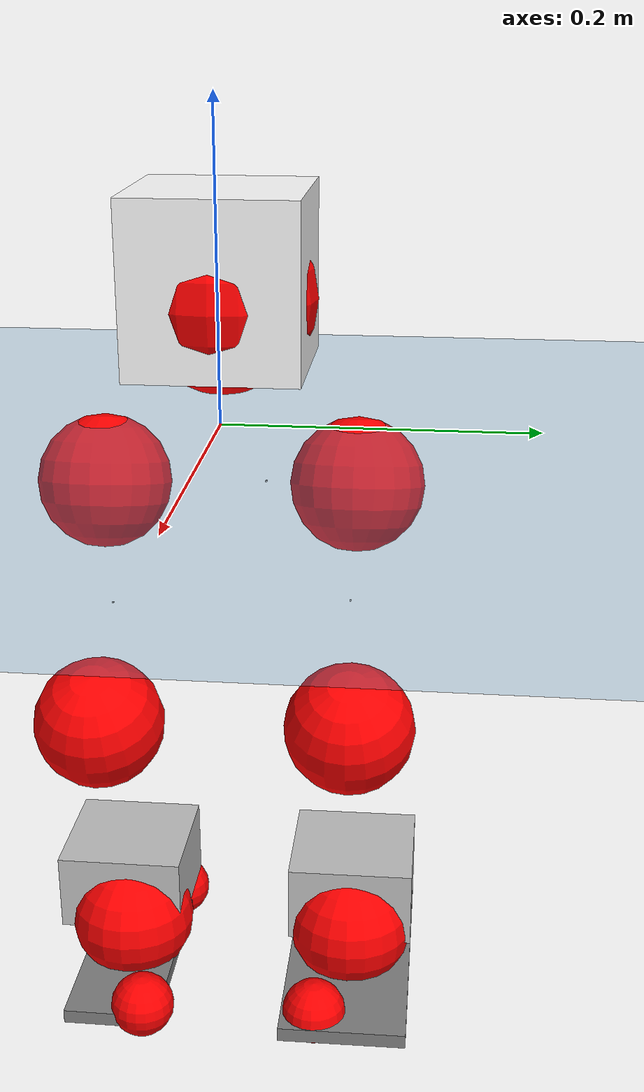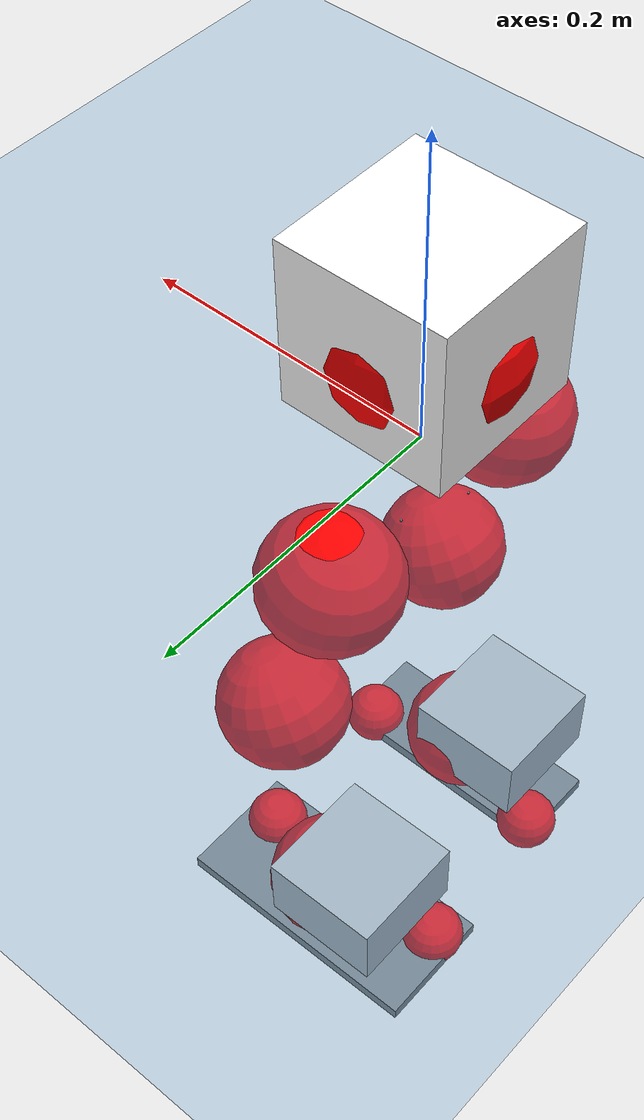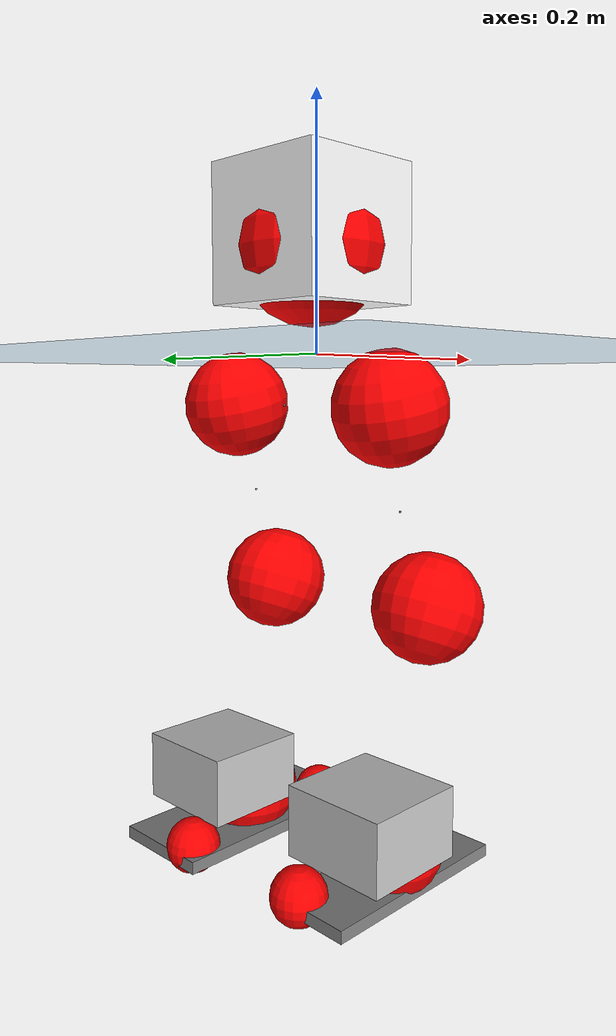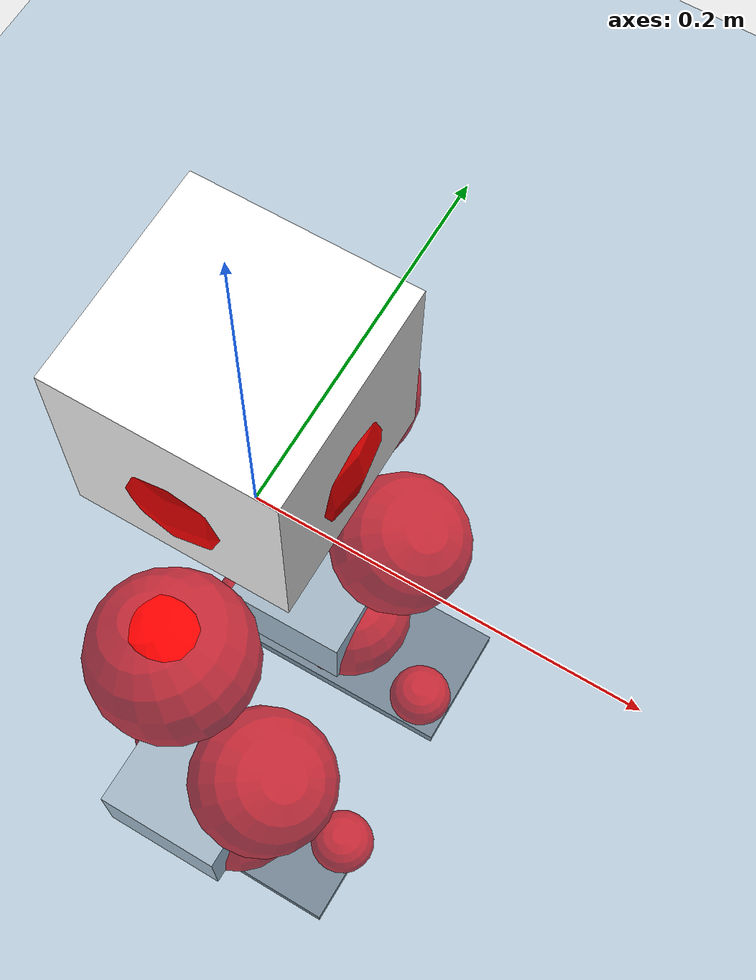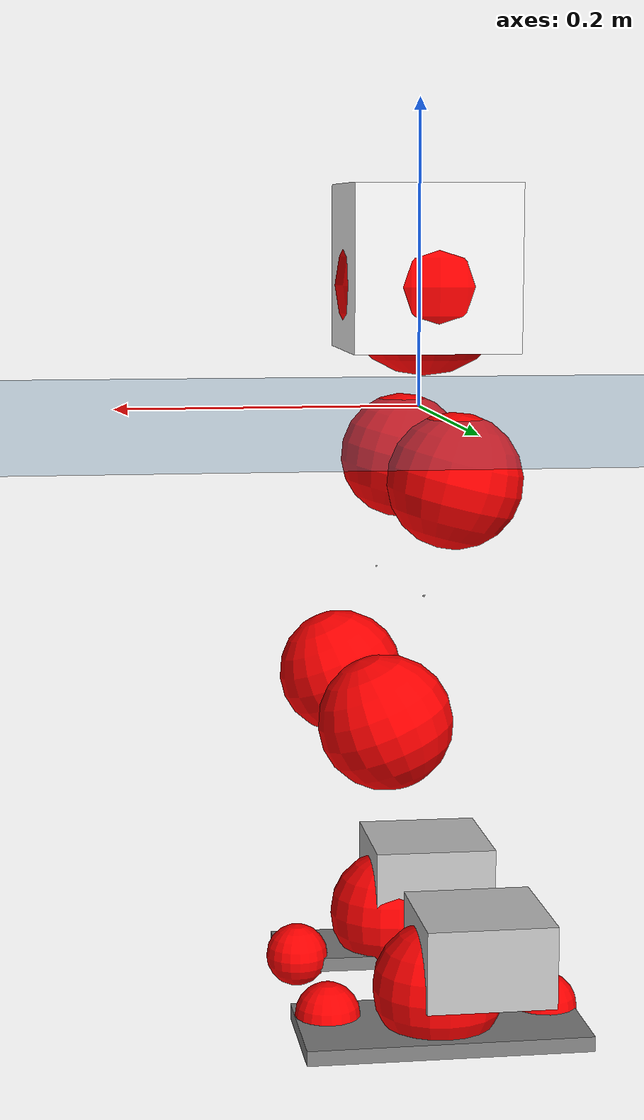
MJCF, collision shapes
<mujoco model="pi_12dof_release_v1">
  <compiler angle="radian" assetdir="assets" balanceinertia="true" inertiafromgeom="false"/>

  <option timestep="0.005" density="1.2" viscosity="2e-05"/>

  <size nkey="1"/>

  <visual>
    <quality shadowsize="8192"/>
    <map shadowclip="0.5"/>
  </visual>

  <default>
    <default class="/">
      <joint armature="0.01" damping="0.01" frictionloss="0.01"/>
      <geom contype="0" conaffinity="0" group="1" solref="-1000 -80"/>
      <site size="0.01 0.005 0.005" group="5"/>
      <general forcelimited="true" biastype="affine" gainprm="20" biasprm="0 -20 -0.5"/>
      <default class="foot">
        <geom size="0.0845 0.036 0.005" type="box" condim="6" group="4" priority="1" friction="0.9 0.2 0.2" solimp="0.015 1 0.005"/>
      </default>
      <default class="reward_collision_sphere">
        <geom group="5" rgba="1 0 0 1"/>
      </default>
    </default>
  </default>

  <asset>
    <texture type="skybox" colorspace="auto" name="//unnamed_texture_0" builtin="gradient" rgb1="0.95 0.95 0.95" rgb2="0.95 0.95 0.95" width="100" height="600"/>
    <texture type="2d" colorspace="auto" name="texplane" builtin="checker" rgb1="0.345 0.575 0.748" rgb2="0.345 0.575 0.748" markrgb="1 1 1" width="512" height="512"/>
    <material name="MatPlane" class="/" texture="texplane" texuniform="true" texrepeat="2 2" specular="0.9"/>
    <mesh name="baselink_1" class="/" file="baselink_1.STL"/>
    <mesh name="r_hip_pitch_link" class="/" file="r_hip_pitch_link.STL"/>
    <mesh name="r_hip_roll_link" class="/" file="r_hip_roll_link.STL"/>
    <mesh name="r_thigh_link" class="/" file="r_thigh_link.STL"/>
    <mesh name="r_calf_link" class="/" file="r_calf_link.STL"/>
    <mesh name="r_ankle_pitch_link" class="/" file="r_ankle_pitch_link.STL"/>
    <mesh name="r_ankle_roll_link" class="/" file="r_ankle_roll_link.STL"/>
    <mesh name="l_hip_pitch_link" class="/" file="l_hip_pitch_link.STL"/>
    <mesh name="l_hip_roll_link" class="/" file="l_hip_roll_link.STL"/>
    <mesh name="l_thigh_link" class="/" file="l_thigh_link.STL"/>
    <mesh name="l_calf_link" class="/" file="l_calf_link.STL"/>
    <mesh name="l_ankle_pitch_link" class="/" file="l_ankle_pitch_link.STL"/>
    <mesh name="l_ankle_roll_link" class="/" file="l_ankle_roll_link.STL"/>
  </asset>

  <worldbody>
    <geom name="floor" class="/" size="100 100 0.125" type="plane" group="0" material="MatPlane"/>
    <light name="toplight_shadow" class="/" pos="0 0 5" dir="0.0990148 0.0990148 -0.990148" type="directional" ambient="0.04 0.04 0.04" diffuse="0.55 0.55 0.55" specular="0.12 0.12 0.12"/>
    <light name="toplight_fill" class="/" pos="0 0 5" dir="0.0990148 0.0990148 -0.990148" type="directional" castshadow="false" ambient="0.04 0.04 0.04" diffuse="0.3 0.3 0.3" specular="0.08 0.08 0.08"/>
    <body name="trunk" pos="-0.00275413 0.00210808 -0.000978885" quat="0.999999 -0.000528008 -0.000480429 0.00103345">
      <inertial pos="0.00178345 -0.00369137 0.0467903" quat="0.696402 0.0140645 0.00627933 0.717487" mass="2.75423" diaginertia="0.0128506 0.00905169 0.00837734"/>
      <joint name="//unnamed_joint_0" type="free"/>
      <geom name="//unnamed_geom_1" class="/" type="mesh" density="0" rgba="1 1 1 1" mesh="baselink_1"/>
      <geom name="//unnamed_geom_2" class="/" size="0.0537736 0.0537736 0.0537736" pos="0 0 0.0922161" type="box" rgba="1 1 1 1"/>
      <geom name="//unnamed_geom_3" class="reward_collision_sphere" size="0.0591509" pos="0 0 0.0806891"/>
      <site name="imu" class="/" pos="0.0125661 -0.00980668 0.0205342" size="0.0107547"/>
      <camera name="track" class="/" pos="0 -2.01011 0" quat="0.707107 0.707107 0 0" mode="trackcom"/>
      <camera name="ego_camera" class="/" pos="0.0801496 0 0.207486" quat="-0.5 -0.5 0.5 0.5"/>
      <body name="r_hip_pitch_link" pos="0.000694639 -0.0235622 -0.0385937" quat="0.992195 0.000959006 -0.124691 -0.000447343">
        <inertial pos="0.00458541 -0.0580253 -0.000228391" quat="-0.0180352 0.705475 -0.0322728 0.707769" mass="0.445439" diaginertia="0.000146473 0.000101136 0.000165041"/>
        <joint name="r_hip_pitch_joint" class="/" pos="0 0 0" axis="0.0103739 -0.999945 0.00121203" range="-1.82058 1.24928" armature="0.0106557" damping="0" frictionloss="0.0109609"/>
        <geom name="//unnamed_geom_4" class="/" type="mesh" density="0" rgba="0.75294 0.75294 0.75294 1" mesh="r_hip_pitch_link"/>
        <geom name="//unnamed_geom_5" class="/" size="0.000537736 0.000537736 0.000537736" type="box" rgba="0.75294 0.75294 0.75294 1"/>
        <body name="r_hip_roll_link" pos="0.000147477 -0.0546376 -0.000672054" quat="1 -2.80015e-05 0.000309164 -0.000885662">
          <inertial pos="-0.00153589 0.00150777 -0.0654798" quat="0.701627 -0.0835559 -0.0864957 0.702322" mass="0.471919" diaginertia="0.000451295 0.00027772 0.00025426"/>
          <joint name="r_hip_roll_joint" class="/" pos="0 0 0" axis="-0.999962 0.00272628 0.00828693" range="-0.0793785 0.446589" armature="0.0117308" damping="0.00376183" frictionloss="0.0110848"/>
          <geom name="//unnamed_geom_6" class="/" type="mesh" density="0" rgba="0.75294 0.75294 0.75294 1" mesh="r_hip_roll_link"/>
          <geom name="//unnamed_geom_7" class="/" size="0.000537736 0.000537736 0.000537736" type="box" rgba="0.75294 0.75294 0.75294 1"/>
          <geom name="//unnamed_geom_8" class="reward_collision_sphere" size="0.0430189"/>
          <body name="r_thigh_link" pos="-0.00104481 0.00502245 -0.079381" quat="1 -8.48093e-05 0.000311255 -8.7316e-05">
            <inertial pos="0.00169366 -0.00181507 -0.0543662" quat="0.732682 0.680373 -0.00800513 -0.0143168" mass="0.142098" diaginertia="0.000177536 9.67533e-05 0.000121652"/>
            <joint name="r_thigh_joint" class="/" pos="0 0 0" axis="0.00265285 0.00359522 -0.99999" stiffness="0.0254611" range="-0.312533 0.515261" armature="0.010411" damping="0.00706816" frictionloss="0.00986761"/>
            <geom name="//unnamed_geom_9" class="/" type="mesh" density="0" rgba="0.75294 0.75294 0.75294 1" mesh="r_thigh_link"/>
            <geom name="//unnamed_geom_10" class="/" size="0.000537736 0.000537736 0.000537736" type="box" rgba="0.75294 0.75294 0.75294 1"/>
            <body name="r_calf_link" pos="0.00472938 -0.00740853 -0.0791827" quat="0.947782 0.000241333 0.318918 6.30556e-05">
              <inertial pos="-0.00456259 0.00177693 -0.0770455" quat="0.999986 -0.000882707 0.000194752 0.00526609" mass="0.987755" diaginertia="0.00463063 0.00341403 0.000336564"/>
              <joint name="r_calf_joint" class="/" pos="0 0 0" axis="-0.0145191 -0.999777 0.0153536" range="-1.67657 0.641259" armature="0.0114116" damping="0" frictionloss="0.00957367"/>
              <geom name="//unnamed_geom_11" class="/" type="mesh" density="0" rgba="0.75294 0.75294 0.75294 1" mesh="r_calf_link"/>
              <geom name="//unnamed_geom_12" class="/" size="0.000537736 0.000537736 0.000537736" type="box" rgba="0.75294 0.75294 0.75294 1"/>
              <geom name="//unnamed_geom_13" class="reward_collision_sphere" size="0.0430189"/>
              <body name="r_ankle_pitch_link" pos="0.000890406 0.00155165 -0.16103" quat="0.980067 0.000129665 -0.198665 -8.67336e-06">
                <inertial pos="0.00378375 -0.0018901 0.00218832" quat="0.00210985 0.70724 -0.00260308 0.706966" mass="0.225639" diaginertia="0.000427701 0.000240581 0.000250619"/>
                <joint name="r_ankle_pitch_joint" class="/" pos="0 0 0" axis="-0.000402662 -1 -0.000844688" range="-1.25893 0.504317" armature="0.0117523" damping="0.0158427" frictionloss="0.0110288"/>
                <geom name="//unnamed_geom_14" class="/" type="mesh" density="0" rgba="0.75294 0.75294 0.75294 1" mesh="r_ankle_pitch_link"/>
                <geom name="//unnamed_geom_15" class="/" size="0.0419434 0.0430189 0.0268868" type="box" rgba="0.75294 0.75294 0.75294 1"/>
                <body name="r_ankle_roll_link" pos="0.0800062 0.0055639 -0.00235349" quat="0.999998 -0.00105761 -0.00151016 -0.00124245">
                  <inertial pos="-0.0309136 0.00011389 -0.0186001" quat="0.563779 0.422715 0.42953 0.564774" mass="0.643702" diaginertia="0.00156091 0.00100096 0.000530049"/>
                  <joint name="r_ankle_roll_joint" class="/" pos="0 0 0" axis="-0.99974 -0.0224568 0.00401174" range="-0.163112 0.111123" armature="0.0121243" damping="0" frictionloss="0.00960165"/>
                  <geom name="//unnamed_geom_16" class="/" type="mesh" density="0" rgba="0.75294 0.75294 0.75294 1" mesh="r_ankle_roll_link"/>
                  <geom name="//unnamed_geom_17" class="/" type="mesh" rgba="0.75294 0.75294 0.75294 1" mesh="r_ankle_roll_link"/>
                  <geom name="right_foot" class="foot" size="0.0837212 0.0316818 0.00470605" pos="-0.0545017 0 -0.0507188"/>
                  <geom name="//unnamed_geom_19" class="reward_collision_sphere" size="0.0430189" pos="-0.053433 0 -0.023054"/>
                  <geom name="//unnamed_geom_20" class="reward_collision_sphere" size="0.0215094" pos="0.0160299 0.0201011 -0.046108"/>
                  <geom name="//unnamed_geom_21" class="reward_collision_sphere" size="0.0215094" pos="-0.128239 0.0201011 -0.046108"/>
                  <site name="right_foot" class="foot" pos="-0.0545017 0 -0.0507188" size="0.0107547"/>
                </body>
              </body>
            </body>
          </body>
        </body>
      </body>
      <body name="l_hip_pitch_link" pos="-0.00605841 0.0252087 -0.0385292" quat="0.992106 0.000421425 -0.125403 0.000588673">
        <inertial pos="-0.00283797 0.0598151 -0.000568092" quat="-0.0469329 0.705938 0.0210474 0.706404" mass="0.480531" diaginertia="0.000175031 0.00010875 0.000212743"/>
        <joint name="l_hip_pitch_joint" class="/" pos="0 0 0" axis="0.0191328 0.999607 0.0204772" stiffness="0.0184148" range="-1.18122 1.79832" armature="0.0129243" damping="0.0301793" frictionloss="0.0115475"/>
        <geom name="//unnamed_geom_22" class="/" type="mesh" density="0" rgba="0.75294 0.75294 0.75294 1" mesh="l_hip_pitch_link"/>
        <geom name="//unnamed_geom_23" class="/" size="0.000537736 0.000537736 0.000537736" type="box" rgba="0.75294 0.75294 0.75294 1"/>
        <body name="l_hip_roll_link" pos="0.000894579 0.0585499 -0.000179622" quat="0.999999 -0.000334121 -0.000884722 -0.000525433">
          <inertial pos="0.00147166 -0.00391921 -0.0701151" quat="0.701459 -0.070374 -0.0791002 0.704802" mass="0.494389" diaginertia="0.000461742 0.000285175 0.000275497"/>
          <joint name="l_hip_roll_joint" class="/" pos="0 0 0" axis="-0.999988 0.00163318 -0.00470522" stiffness="0.000220029" range="-0.542189 0.144977" armature="0.00969213" damping="0.00383833" frictionloss="0.0103243"/>
          <geom name="//unnamed_geom_24" class="/" type="mesh" density="0" rgba="0.75294 0.75294 0.75294 1" mesh="l_hip_roll_link"/>
          <geom name="//unnamed_geom_25" class="/" size="0.000537736 0.000537736 0.000537736" type="box" rgba="0.75294 0.75294 0.75294 1"/>
          <geom name="//unnamed_geom_26" class="reward_collision_sphere" size="0.0430189"/>
          <body name="l_thigh_link" pos="-0.000196917 -0.00218144 -0.0749039" quat="0.999997 0.000921445 0.00182729 0.00132258">
            <inertial pos="0.00271761 -0.0013045 -0.0603944" quat="0.673815 0.738884 -0.00120811 -0.00464519" mass="0.144142" diaginertia="0.000172823 9.40029e-05 0.000116359"/>
            <joint name="l_thigh_joint" class="/" pos="0 0 0" axis="0.0114747 0.00139467 -0.999933" range="-0.526555 0.258374" armature="0.0102316" damping="0.0137609" frictionloss="0.0115108"/>
            <geom name="//unnamed_geom_27" class="/" type="mesh" density="0" rgba="0.75294 0.75294 0.75294 1" mesh="l_thigh_link"/>
            <geom name="//unnamed_geom_28" class="/" size="0.000537736 0.000537736 0.000537736" type="box" rgba="0.75294 0.75294 0.75294 1"/>
            <body name="l_calf_link" pos="0.00370138 0.00188369 -0.0836832" quat="0.947658 7.27273e-06 0.319285 0.00115872">
              <inertial pos="-0.000223514 0.00483434 -0.0794568" quat="0.999827 0.0149478 -0.00105449 -0.0110335" mass="0.98779" diaginertia="0.00481188 0.00348804 0.000346449"/>
              <joint name="l_calf_joint" class="/" pos="0 0 0" axis="0.00933963 0.999908 -0.00987633" stiffness="0.00320653" range="-0.656348 1.6938" armature="0.0103259" damping="0.0127996" frictionloss="0.0117909"/>
              <geom name="//unnamed_geom_29" class="/" type="mesh" density="0" rgba="0.75294 0.75294 0.75294 1" mesh="l_calf_link"/>
              <geom name="//unnamed_geom_30" class="/" size="0.000537736 0.000537736 0.000537736" type="box" rgba="0.75294 0.75294 0.75294 1"/>
              <geom name="//unnamed_geom_31" class="reward_collision_sphere" size="0.0430189"/>
              <body name="l_ankle_pitch_link" pos="0.0021827 -8.42625e-05 -0.164454" quat="0.980121 0.000276464 -0.198396 0.00104697">
                <inertial pos="0.00801321 -0.00172029 0.00231906" quat="-0.0102667 0.713831 -0.0194285 0.699973" mass="0.210087" diaginertia="0.000423568 0.000220272 0.000226118"/>
                <joint name="l_ankle_pitch_joint" class="/" pos="0 0 0" axis="0.00681996 0.999936 0.00902236" stiffness="0.00856563" range="-0.508374 1.30671" armature="0.00927885" damping="0.0153672" frictionloss="0.0120282"/>
                <geom name="//unnamed_geom_32" class="/" type="mesh" density="0" rgba="0.75294 0.75294 0.75294 1" mesh="l_ankle_pitch_link"/>
                <geom name="//unnamed_geom_33" class="/" size="0.0419434 0.0430189 0.0268868" type="box" rgba="0.75294 0.75294 0.75294 1"/>
                <body name="l_ankle_roll_link" pos="0.0800336 -3.67259e-05 -0.000511762" quat="1 -0.000150394 5.03686e-05 -4.51502e-05">
                  <inertial pos="-0.022908 0.00472819 -0.020378" quat="0.56192 0.432263 0.432937 0.55674" mass="0.617632" diaginertia="0.00155039 0.00100895 0.0005632"/>
                  <joint name="l_ankle_roll_joint" class="/" pos="0 0 0" axis="-0.999915 0.0113948 -0.00634191" range="-0.106538 0.146787" armature="0.0119059" damping="0" frictionloss="0.00938399"/>
                  <geom name="//unnamed_geom_34" class="/" type="mesh" density="0" rgba="0.75294 0.75294 0.75294 1" mesh="l_ankle_roll_link"/>
                  <geom name="//unnamed_geom_35" class="/" type="mesh" rgba="0.75294 0.75294 0.75294 1" mesh="l_ankle_roll_link"/>
                  <geom name="left_foot" class="foot" size="0.0922027 0.0427742 0.00487184" pos="-0.0545017 0 -0.0507188"/>
                  <geom name="//unnamed_geom_37" class="reward_collision_sphere" size="0.0430189" pos="-0.053433 0 -0.023054"/>
                  <geom name="//unnamed_geom_38" class="reward_collision_sphere" size="0.0215094" pos="0.0160299 -0.0201011 -0.046108"/>
                  <geom name="//unnamed_geom_39" class="reward_collision_sphere" size="0.0215094" pos="-0.128239 -0.0201011 -0.046108"/>
                  <site name="left_foot" class="foot" pos="-0.0545017 0 -0.0507188" size="0.0107547"/>
                </body>
              </body>
            </body>
          </body>
        </body>
      </body>
    </body>
  </worldbody>

  <contact>
    <pair class="/" geom1="floor" geom2="right_foot" name="//unnamed_contact_1"/>
    <pair class="/" geom1="floor" geom2="left_foot" name="//unnamed_contact_0"/>
  </contact>

  <actuator>
    <general name="r_hip_pitch_joint" class="/" joint="r_hip_pitch_joint" forcerange="-24.1749 24.1749" gainprm="22.3738" biasprm="0 -22.3738 -0.52245"/>
    <general name="r_hip_roll_joint" class="/" joint="r_hip_roll_joint" forcerange="-19.9532 19.9532" gainprm="22.3738" biasprm="0 -22.3738 -0.52245"/>
    <general name="r_thigh_joint" class="/" joint="r_thigh_joint" forcerange="-20.8565 20.8565" gainprm="22.3738" biasprm="0 -22.3738 -0.52245"/>
    <general name="r_calf_joint" class="/" joint="r_calf_joint" forcerange="-18.9231 18.9231" gainprm="22.3738" biasprm="0 -22.3738 -0.52245"/>
    <general name="r_ankle_pitch_joint" class="/" joint="r_ankle_pitch_joint" forcerange="-20.4116 20.4116" gainprm="22.3738" biasprm="0 -22.3738 -0.52245"/>
    <general name="r_ankle_roll_joint" class="/" joint="r_ankle_roll_joint" forcerange="-24.6207 24.6207" gainprm="22.3738" biasprm="0 -22.3738 -0.52245"/>
    <general name="l_hip_pitch_joint" class="/" joint="l_hip_pitch_joint" forcerange="-22.9439 22.9439" gainprm="22.3738" biasprm="0 -22.3738 -0.52245"/>
    <general name="l_hip_roll_joint" class="/" joint="l_hip_roll_joint" forcerange="-24.2671 24.2671" gainprm="22.3738" biasprm="0 -22.3738 -0.52245"/>
    <general name="l_thigh_joint" class="/" joint="l_thigh_joint" forcerange="-24.2002 24.2002" gainprm="22.3738" biasprm="0 -22.3738 -0.52245"/>
    <general name="l_calf_joint" class="/" joint="l_calf_joint" forcerange="-22.883 22.883" gainprm="22.3738" biasprm="0 -22.3738 -0.52245"/>
    <general name="l_ankle_pitch_joint" class="/" joint="l_ankle_pitch_joint" forcerange="-24.02 24.02" gainprm="22.3738" biasprm="0 -22.3738 -0.52245"/>
    <general name="l_ankle_roll_joint" class="/" joint="l_ankle_roll_joint" forcerange="-23.1176 23.1176" gainprm="22.3738" biasprm="0 -22.3738 -0.52245"/>
  </actuator>

  <sensor>
    <gyro site="imu" name="imu_angular_velocity"/>
    <velocimeter site="imu" name="imu_linear_velocity"/>
    <framelinvel objtype="site" objname="left_foot" name="left_foot_global_linear_velocity"/>
    <framelinvel objtype="site" objname="right_foot" name="right_foot_global_linear_velocity"/>
  </sensor>

  <keyframe>
    <key name="home" qpos="0 0 0.291 1 0 0 0 0.4 0 0 -0.8 0.4 0 -0.4 0 0 0.8 -0.4 0"/>
  </keyframe>
</mujoco>
